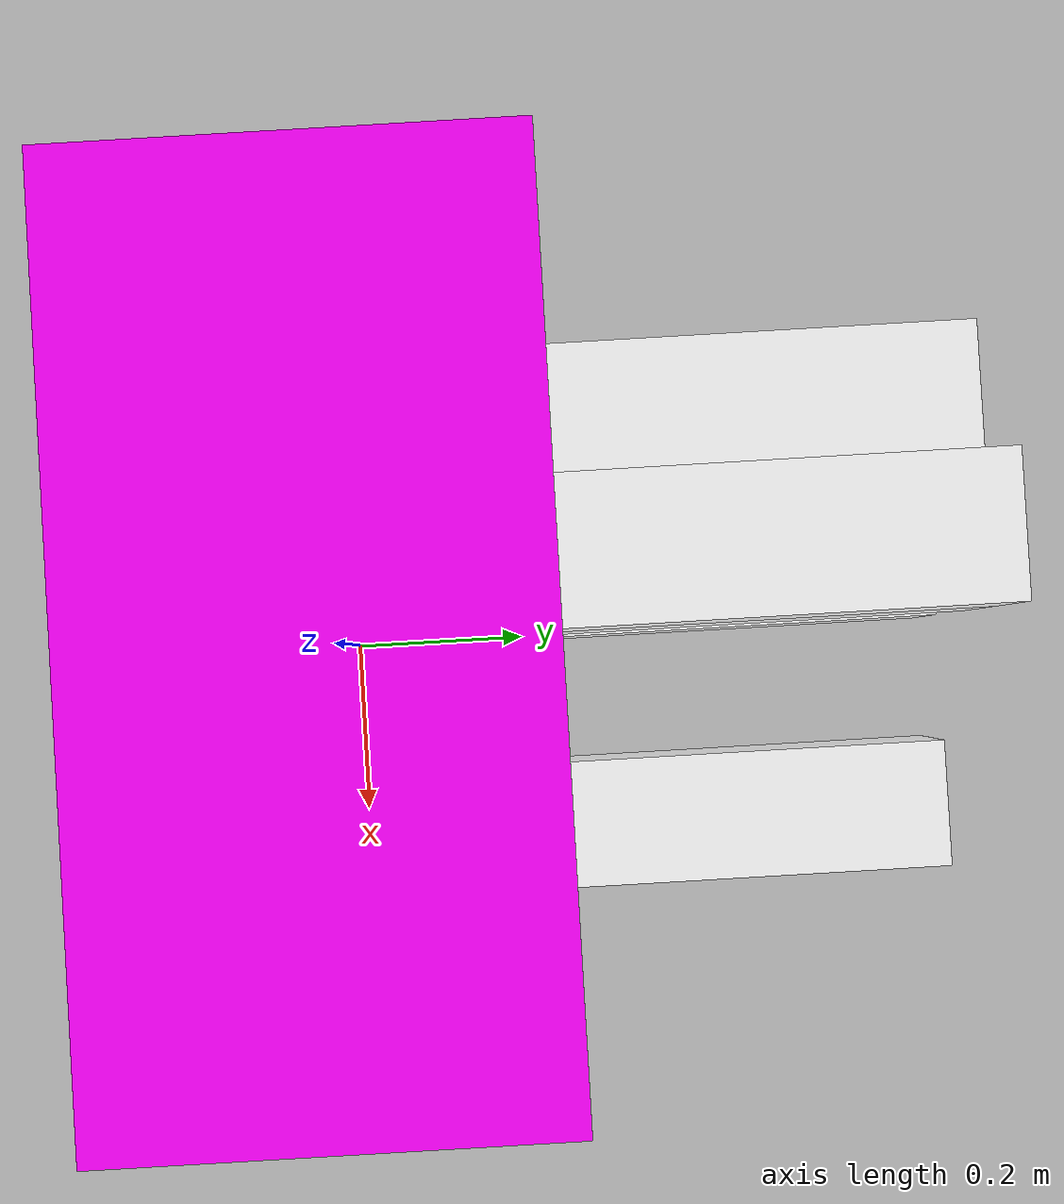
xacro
<?xml version="1.0"?>
<robot xmlns:xacro="http://www.ros.org/wiki/xacro" name="tag16h5_0">

  <!-- AprilTag 主体尺寸 -->
  <xacro:property name="x" value="1" />
  <xacro:property name="y" value="0.5" />
  <xacro:property name="z" value="${0.75 * x}" />

  <link name="tag16h5_0_link">
    <visual>
      <geometry>
        <box size="${x} ${y} ${z}" />
      </geometry>
      <material name="blue">
        <color rgba="1 0 1 1" />
      </material>
    </visual>

    <collision>
      <geometry>
        <box size="${x} ${y} ${z}" />
      </geometry>
    </collision>

    <inertial>
      <mass value="0.1" />
      <inertia ixx="${0.1/12 * (y*y + z*z)}" ixy="0.0" ixz="0.0"
               iyy="${0.1/12 * (x*x + z*z)}" iyz="0.0"
               izz="${0.1/12 * (x*x + y*y)}" />
    </inertial>
  </link>

  <!-- 6x6 方块阵列配置说明 -->

  <!-- 小长方体参数定义 -->
  <xacro:property name="block_length" value="${x/6}" />     <!-- 小方块X方向长度 = AprilTag长度/6 -->
  <xacro:property name="block_width" value="${y}" />        <!-- 小方块Y方向宽度 = AprilTag宽度 -->
  <xacro:property name="block_height" value="${z/6}" />     <!-- 小方块Z方向高度 = AprilTag高度/6 -->
  <xacro:property name="block_mass" value="0.01" />         <!-- 小方块质量(kg) -->

  <!-- 阵列间距和起始位置 -->
  <xacro:property name="grid_spacing_x" value="${block_length}" />  <!-- X方向网格间距 -->
  <xacro:property name="grid_spacing_z" value="${z/6}" />           <!-- Z方向网格间距 -->

  <!-- 阵列起始位置(紧贴AprilTag前表面) -->
  <xacro:property name="array_start_x" value="${x/2 - block_length/2}" />   <!-- 从AprilTag右边缘开始 -->
  <xacro:property name="array_start_y" value="${y/2 + block_width/2}" />    <!-- 小方块中心位于AprilTag前表面+宽度/2 -->
  <xacro:property name="array_start_z" value="${z/2 - block_height/2}" />   <!-- 从AprilTag顶部边缘开始 -->

  <!-- 第1行 (i=0): [1 1 1 1 1 1] - 全部为1，无小长方体 -->

  <!-- 第2行 (i=1): [1 1 1 0 1 1] - 第4个位置(j=3)为0，放置小长方体 -->

  <!-- 第2行第4列 (1,3) - 小长方体 -->
  <link name="block_1_3">
    <visual>
      <geometry>
        <box size="${block_length} ${block_width} ${block_height}" />
      </geometry>
      <material name="obstacle_white">
        <color rgba="1.0 1.0 1.0 1" />  <!-- 白色障碍物 -->
      </material>
    </visual>
    <collision>
      <geometry>
        <box size="${block_length} ${block_width} ${block_height}" />
      </geometry>
    </collision>
    <inertial>
      <mass value="${block_mass}" />
      <inertia ixx="${block_mass/12 * (block_width*block_width + block_height*block_height)}"
               ixy="0.0" ixz="0.0"
               iyy="${block_mass/12 * (block_length*block_length + block_height*block_height)}"
               iyz="0.0"
               izz="${block_mass/12 * (block_length*block_length + block_width*block_width)}" />
    </inertial>
  </link>

  <joint name="tag_to_block_1_3" type="fixed">
    <parent link="tag16h5_0_link"/>
    <child link="block_1_3"/>
    <!-- 第2行第4列: 行索引=1, 列索引=3 -->
    <origin xyz="${array_start_x - 3*grid_spacing_x} ${array_start_y} ${array_start_z - 1*grid_spacing_z}" rpy="0 0 0"/>
  </joint>

  <!-- 第3行 (i=2): [1 1 1 0 0 1] - 第4,5个位置(j=3,4)为0，放置小长方体 -->

  <!-- 第3行第4列 (2,3) - 小长方体 -->
  <link name="block_2_3">
    <visual>
      <geometry>
        <box size="${block_length} ${block_width} ${block_height}" />
      </geometry>
      <material name="obstacle_white">
        <color rgba="1.0 1.0 1.0 1" />
      </material>
    </visual>
    <collision>
      <geometry>
        <box size="${block_length} ${block_width} ${block_height}" />
      </geometry>
    </collision>
    <inertial>
      <mass value="${block_mass}" />
      <inertia ixx="${block_mass/12 * (block_width*block_width + block_height*block_height)}"
               ixy="0.0" ixz="0.0"
               iyy="${block_mass/12 * (block_length*block_length + block_height*block_height)}"
               iyz="0.0"
               izz="${block_mass/12 * (block_length*block_length + block_width*block_width)}" />
    </inertial>
  </link>

  <joint name="tag_to_block_2_3" type="fixed">
    <parent link="tag16h5_0_link"/>
    <child link="block_2_3"/>
    <!-- 第3行第4列: 行索引=2, 列索引=3 -->
    <origin xyz="${array_start_x - 3*grid_spacing_x} ${array_start_y} ${array_start_z - 2*grid_spacing_z}" rpy="0 0 0"/>
  </joint>

  <!-- 第3行第5列 (2,4) - 小长方体 -->
  <link name="block_2_4">
    <visual>
      <geometry>
        <box size="${block_length} ${block_width} ${block_height}" />
      </geometry>
      <material name="obstacle_white">
        <color rgba="1.0 1.0 1.0 1" />
      </material>
    </visual>
    <collision>
      <geometry>
        <box size="${block_length} ${block_width} ${block_height}" />
      </geometry>
    </collision>
    <inertial>
      <mass value="${block_mass}" />
      <inertia ixx="${block_mass/12 * (block_width*block_width + block_height*block_height)}"
               ixy="0.0" ixz="0.0"
               iyy="${block_mass/12 * (block_length*block_length + block_height*block_height)}"
               iyz="0.0"
               izz="${block_mass/12 * (block_length*block_length + block_width*block_width)}" />
    </inertial>
  </link>

  <joint name="tag_to_block_2_4" type="fixed">
    <parent link="tag16h5_0_link"/>
    <child link="block_2_4"/>
    <!-- 第3行第5列: 行索引=2, 列索引=4 -->
    <origin xyz="${array_start_x - 4*grid_spacing_x} ${array_start_y} ${array_start_z - 2*grid_spacing_z}" rpy="0 0 0"/>
  </joint>

  <!-- 第4行 (i=3): [1 1 1 1 0 1] - 第5个位置(j=4)为0，放置小长方体 -->

  <!-- 第4行第5列 (3,4) - 小长方体 -->
  <link name="block_3_4">
    <visual>
      <geometry>
        <box size="${block_length} ${block_width} ${block_height}" />
      </geometry>
      <material name="obstacle_white">
        <color rgba="1.0 1.0 1.0 1" />
      </material>
    </visual>
    <collision>
      <geometry>
        <box size="${block_length} ${block_width} ${block_height}" />
      </geometry>
    </collision>
    <inertial>
      <mass value="${block_mass}" />
      <inertia ixx="${block_mass/12 * (block_width*block_width + block_height*block_height)}"
               ixy="0.0" ixz="0.0"
               iyy="${block_mass/12 * (block_length*block_length + block_height*block_height)}"
               iyz="0.0"
               izz="${block_mass/12 * (block_length*block_length + block_width*block_width)}" />
    </inertial>
  </link>

  <joint name="tag_to_block_3_4" type="fixed">
    <parent link="tag16h5_0_link"/>
    <child link="block_3_4"/>
    <!-- 第4行第5列: 行索引=3, 列索引=4 -->
    <origin xyz="${array_start_x - 4*grid_spacing_x} ${array_start_y} ${array_start_z - 3*grid_spacing_z}" rpy="0 0 0"/>
  </joint>

  <!-- 第5行 (i=4): [1 0 1 0 0 1] - 第2,4,5个位置(j=1,3,4)为0，放置小长方体 -->

  <!-- 第5行第2列 (4,1) - 小长方体 -->
  <link name="block_4_1">
    <visual>
      <geometry>
        <box size="${block_length} ${block_width} ${block_height}" />
      </geometry>
      <material name="obstacle_white">
        <color rgba="1.0 1.0 1.0 1" />
      </material>
    </visual>
    <collision>
      <geometry>
        <box size="${block_length} ${block_width} ${block_height}" />
      </geometry>
    </collision>
    <inertial>
      <mass value="${block_mass}" />
      <inertia ixx="${block_mass/12 * (block_width*block_width + block_height*block_height)}"
               ixy="0.0" ixz="0.0"
               iyy="${block_mass/12 * (block_length*block_length + block_height*block_height)}"
               iyz="0.0"
               izz="${block_mass/12 * (block_length*block_length + block_width*block_width)}" />
    </inertial>
  </link>

  <joint name="tag_to_block_4_1" type="fixed">
    <parent link="tag16h5_0_link"/>
    <child link="block_4_1"/>
    <!-- 第5行第2列: 行索引=4, 列索引=1 -->
    <origin xyz="${array_start_x - 1*grid_spacing_x} ${array_start_y} ${array_start_z - 4*grid_spacing_z}" rpy="0 0 0"/>
  </joint>

  <!-- 第5行第4列 (4,3) - 小长方体 -->
  <link name="block_4_3">
    <visual>
      <geometry>
        <box size="${block_length} ${block_width} ${block_height}" />
      </geometry>
      <material name="obstacle_white">
        <color rgba="1.0 1.0 1.0 1" />
      </material>
    </visual>
    <collision>
      <geometry>
        <box size="${block_length} ${block_width} ${block_height}" />
      </geometry>
    </collision>
    <inertial>
      <mass value="${block_mass}" />
      <inertia ixx="${block_mass/12 * (block_width*block_width + block_height*block_height)}"
               ixy="0.0" ixz="0.0"
               iyy="${block_mass/12 * (block_length*block_length + block_height*block_height)}"
               iyz="0.0"
               izz="${block_mass/12 * (block_length*block_length + block_width*block_width)}" />
    </inertial>
  </link>

  <joint name="tag_to_block_4_3" type="fixed">
    <parent link="tag16h5_0_link"/>
    <child link="block_4_3"/>
    <!-- 第5行第4列: 行索引=4, 列索引=3 -->
    <origin xyz="${array_start_x - 3*grid_spacing_x} ${array_start_y} ${array_start_z - 4*grid_spacing_z}" rpy="0 0 0"/>
  </joint>

  <!-- 第5行第5列 (4,4) - 小长方体 -->
  <link name="block_4_4">
    <visual>
      <geometry>
        <box size="${block_length} ${block_width} ${block_height}" />
      </geometry>
      <material name="obstacle_white">
        <color rgba="1.0 1.0 1.0 1" />
      </material>
    </visual>
    <collision>
      <geometry>
        <box size="${block_length} ${block_width} ${block_height}" />
      </geometry>
    </collision>
    <inertial>
      <mass value="${block_mass}" />
      <inertia ixx="${block_mass/12 * (block_width*block_width + block_height*block_height)}"
               ixy="0.0" ixz="0.0"
               iyy="${block_mass/12 * (block_length*block_length + block_height*block_height)}"
               iyz="0.0"
               izz="${block_mass/12 * (block_length*block_length + block_width*block_width)}" />
    </inertial>
  </link>

  <joint name="tag_to_block_4_4" type="fixed">
    <parent link="tag16h5_0_link"/>
    <child link="block_4_4"/>
    <!-- 第5行第5列: 行索引=4, 列索引=4 -->
    <origin xyz="${array_start_x - 4*grid_spacing_x} ${array_start_y} ${array_start_z - 4*grid_spacing_z}" rpy="0 0 0"/>
  </joint>

  <!-- 第6行 (i=5): [1 1 1 1 1 1] - 全部为1，无小长方体 -->

  <!-- Gazebo 材质定义 - 确保在 Gazebo 仿真中显示正确颜色 -->

  <!-- AprilTag 主体材质 -->
  <gazebo reference="tag16h5_0_link">
    <material>Gazebo/Purple</material>
  </gazebo>

  <!-- 小方块材质 - 白色 -->
  <gazebo reference="block_1_3">
    <material>Gazebo/White</material>
  </gazebo>

  <gazebo reference="block_2_3">
    <material>Gazebo/White</material>
  </gazebo>

  <gazebo reference="block_2_4">
    <material>Gazebo/White</material>
  </gazebo>

  <gazebo reference="block_3_4">
    <material>Gazebo/White</material>
  </gazebo>

  <gazebo reference="block_4_1">
    <material>Gazebo/White</material>
  </gazebo>

  <gazebo reference="block_4_3">
    <material>Gazebo/White</material>
  </gazebo>

  <gazebo reference="block_4_4">
    <material>Gazebo/White</material>
  </gazebo>

</robot>
